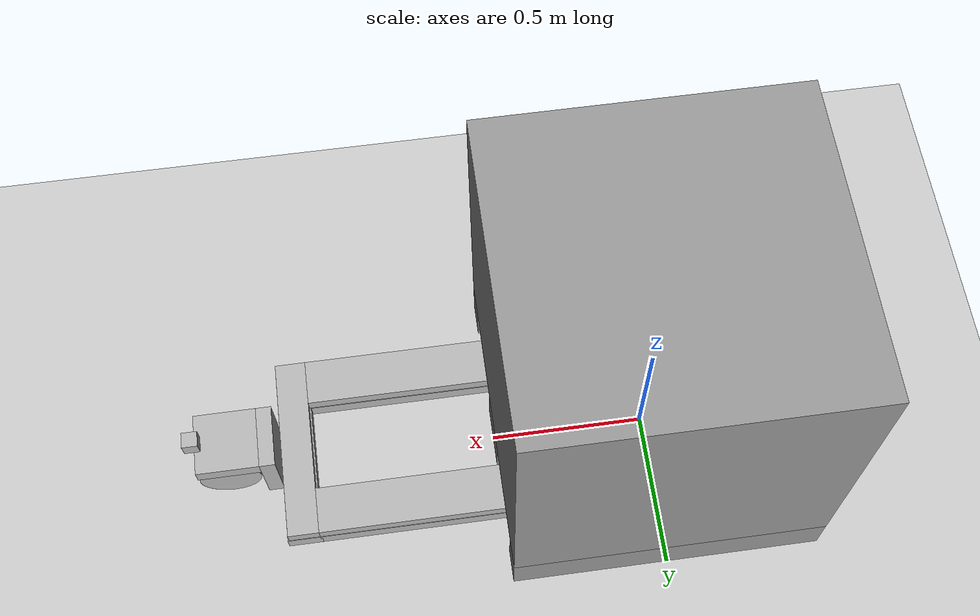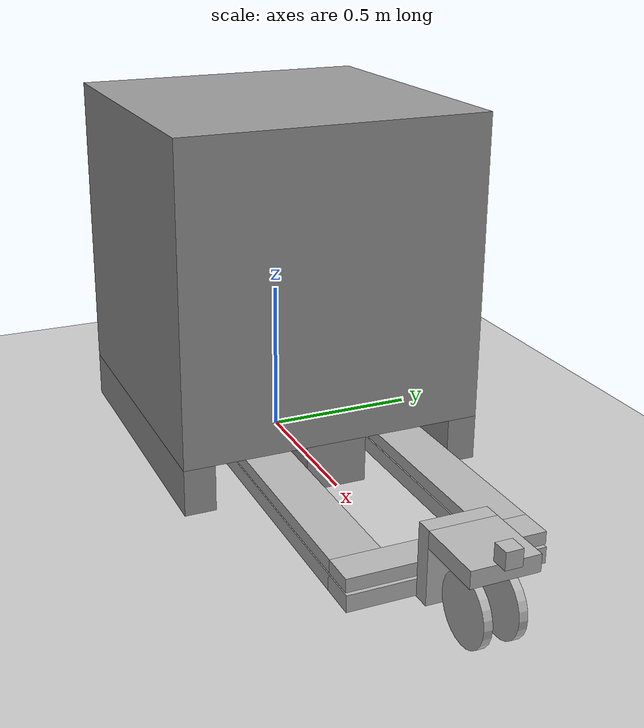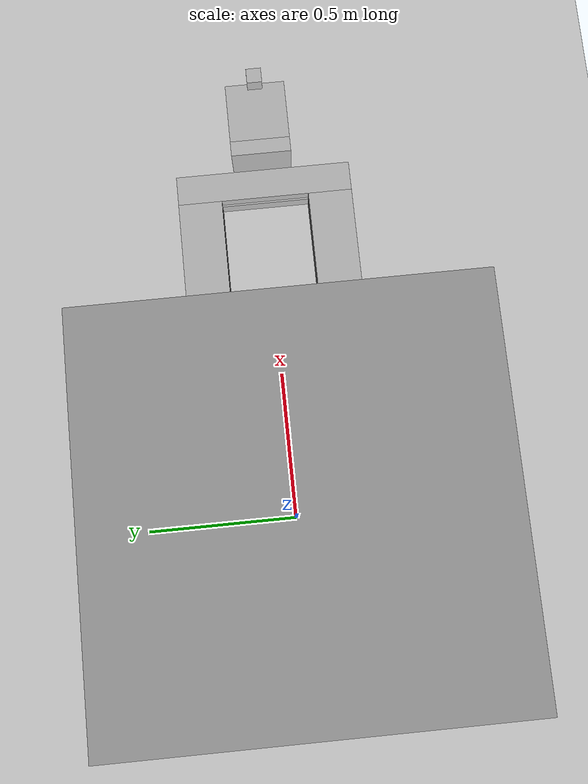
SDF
<?xml version="1.0" ?>
<sdf version="1.4">
  <world name="default">
    <include>
      <uri>model://ground_plane</uri>
    </include>
    <include>
      <uri>model://sun</uri>
    </include>
    <include>
      <uri>model://gazebo_pallet_jack</uri>
      <pose>0.7 0 0 0 0 0</pose>
    </include>
    <include>
    	<uri>model://200k_box</uri>
      <pose>0 0 0 0 0 0</pose>
    </include>
  </world>
</sdf>

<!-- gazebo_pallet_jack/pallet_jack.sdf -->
<sdf version='1.4'>
	<model name="pallet_jack">
		<static>false</static>

		<!-- CHASSIS -->
		<link name='chassis'>
			<pose>0 0 0 0 0 0</pose>

			<collision name='center_collision'>
				<pose>.4475 0 .075 0 0 0</pose>
				<geometry>
					<box>
						<size>.11  .6 .05</size> <!-- x = .1 + .01 avoid collision between front and lift-->
					</box>
				</geometry>
			</collision>

			<visual name='center_visual'>
				<pose>.4475 0 .075 0 0 0</pose>
				<geometry>
					<box>
						<size>.11 .6 .05</size>
					</box>
				</geometry>
			</visual>

			<collision name='left_collision'>
				<pose>-.1526 -.225 .075 0 0 0</pose>
				<geometry>
					<box>
						<size>1.1 .15 .05</size>
					</box>
				</geometry>
			</collision>

			<visual name='left_visual'>
				<pose>-.1526 -.225 .075 0 0 0</pose>
				<geometry>
					<box>
						<size>1.1 .15 .05</size>
					</box>
				</geometry>
			</visual>

			<collision name='right_collision'>
				<pose>-.1526 .225 .075 0 0 0</pose>
				<geometry>
					<box>
						<size>1.1 .15 .05</size>
					</box>
				</geometry>
			</collision>

			<visual name='right_visual'>
				<pose>-.1526 .225 .075 0 0 0</pose>
				<geometry>
					<box>
						<size>1.1 .15 .05</size>
					</box>
				</geometry>
			</visual>

			<collision name = "front_collision">
				<pose>.53 0 .16 0 0 0</pose>
				<geometry>
					<box>
						<size>.05 .2 .22</size>
					</box>
				</geometry>
			</collision>

			<visual name = "front_visual">
				<pose>.53 0 .16 0 0 0</pose>
				<geometry>
					<box>
						<size>.05 .2 .22</size>
					</box>
				</geometry>
			</visual>

			<collision name = "front_up_collision">
				<pose>.655 0 .245 0 0 0</pose>
				<geometry>
					<box>
						<size>.2 .2 .05</size>
					</box>
				</geometry>
			</collision>

			<visual name = "front_up_visual">
				<pose>.655 0 .245 0 0 0</pose>
				<geometry>
					<box>
						<size>.2 .2 .05</size>
					</box>
				</geometry>
			</visual>

			<!-- Intertia values -->
			<inertial>
				<mass>100</mass>
			</inertial>
		</link>

		<!--LIFT-->
		<link name = "lift">
			<pose> 0 0 .125 0 0 0</pose> <!--z pose: 0.1 + 0.04/2 + 0,005 to avoid chassis collision-->
			<collision name='center_lift_collision'>
				<pose>.447 0 0 0 0 0</pose>
				<geometry>
					<box>
						<size>.1 .6 .04</size>
					</box>
				</geometry>
			</collision>

			<visual name='center_lift_visual'>
				<pose>.447 0 0 0 0 0</pose>
				<geometry>
					<box>
						<size>.1 .6 .04</size>
					</box>
				</geometry>
			</visual>

			<collision name='left_lift_collision'>
				<pose>-.1526 -.225 0 0 0 0</pose>
				<geometry>
					<box>
						<size>1.1 .15 .04</size>
					</box>
				</geometry>
				<surface>
					<friction>
						<ode>
							<mu>1000000000</mu>
							<mu2>1000000000</mu2>
							<slip1>0</slip1>
							<slip2>0</slip2>
						</ode>
					</friction>
				</surface>
			</collision>

			<visual name='left_lift_visual'>
				<pose>-.1526 -.225 0 0 0 0</pose>
				<geometry>
					<box>
						<size>1.1 .15 .04</size>
					</box>
				</geometry>
			</visual>

			<collision name='right_lift_collision'>
				<pose>-.1526 .225 0 0 0 0</pose>
				<geometry>
					<box>
						<size>1.1 .15 .04</size>
					</box>
				</geometry>
				<surface>
					<friction>
						<ode>
							<mu>1000000000</mu>
							<mu2>1000000000</mu2>
							<slip1>0</slip1>
							<slip2>0</slip2>
						</ode>
					</friction>
				</surface>
			</collision>

			<visual name='right_lift_visual'>
				<pose>-.1526 .225 0 0 0 0</pose>
				<geometry>
					<box>
						<size>1.1 .15 .04</size>
					</box>
				</geometry>
			</visual>

			<!-- Intertia values -->
			<inertial>
				<mass>50</mass>
			</inertial>

			<!-- laser sensor is solidal to the lift -->
			<!-- it was gpu_ray -->
			<sensor type="ray" name="head_hokuyo_sensor">
				<pose>.5 0 .06 0 0 3.14</pose>
				<visualize>true</visualize>
				<update_rate>40</update_rate>
				<ray>
					<scan>
						<horizontal>
							<samples>720</samples>
							<resolution>1</resolution>
							<min_angle>-1.0472</min_angle>
							<max_angle>1.0472</max_angle>
						</horizontal>
					</scan>
					<range>
						<min>0.01</min>
						<max>.6</max>
						<resolution>0.01</resolution>
					</range>
					<noise>
						<type>gaussian</type>
						<mean>0.0</mean>
						<stddev>0.01</stddev>
					</noise>
				</ray>
				<plugin name="gazebo_ros_head_hokuyo_controller" filename="libgazebo_ros_laser.so">
					<topicName>/pallet_jack/laser/scan</topicName>
					<frameName>chassis</frameName>
				</plugin>
				<plugin name = "laser_plugin" filename = "liblaser_plugin.so"/>
			</sensor>
		</link>

		<!--BACK LEFT WHEEL-->
		<link name = "back_left_wheel">
			<pose>-.6 -.317 .04 0 1.5707 1.5707</pose>
			<collision name = "back_left_wheel_collision">
				<geometry>
					<cylinder>
						<radius>.04</radius>
						<length>.03</length>
					</cylinder>
				</geometry>
			</collision>

			<visual name = "back_left_wheel_visual">
				<geometry>
					<cylinder>
						<radius>.04</radius>
						<length>.03</length>
					</cylinder>
				</geometry>
			</visual>
			<!-- Intertia values -->
			<inertial>
				<mass>5</mass>
			</inertial>
		</link>

		<!--BACK RIGHT WHEEL-->
		<link name = "back_right_wheel">
			<pose>-.6 .317 .04 0 1.5707 1.5707</pose>
			<collision name = "back_right_wheel_collision">
				<geometry>
					<cylinder>
						<radius>.04</radius>
						<length>.03</length>
					</cylinder>
				</geometry>
			</collision>

			<visual name = "back_right_wheel_visual">
				<geometry>
					<cylinder>
						<radius>.04</radius>
						<length>.03</length>
					</cylinder>
				</geometry>
			</visual>

			<!-- Intertia values -->
			<inertial>
				<mass>5</mass>
			</inertial>
		</link>
		<!-- Wheel sources of movement -->

		<!--CENTER RIGHT WHEEL-->
		<link name = "center_right_wheel">
			<pose>.67 .05 .1 0 1.5707 1.5707</pose>
			<collision name = "center_right_wheel_collision">
				<geometry>
					<cylinder>
						<radius>.1</radius>
						<length>.025</length>
					</cylinder>
				</geometry>
				<surface>
					<friction>
						<ode>
							<mu>10000000000</mu>
							<mu2>10000000000</mu2>
							<slip1>0</slip1>
							<slip2>0</slip2>
						</ode>
					</friction>
				</surface>
			</collision>

			<visual name = "center_right_wheel_visual">
				<geometry>
					<cylinder>
						<radius>.1</radius>
						<length>.025</length>
					</cylinder>
				</geometry>
			</visual>

			<!-- Intertia values -->
			<inertial>
				<mass>10</mass>
			</inertial>
		</link>

		<!--CENTER LEFT WHEEL-->
		<link name = "center_left_wheel">
			<pose>.67 -.05 .1 0 1.5707 1.5707</pose>
			<collision name = "center_left_wheel_collision">
				<geometry>
					<cylinder>
						<radius>.1</radius>
						<length>.025</length>
					</cylinder>
				</geometry>
				<surface>
					<friction>
						<ode>
							<mu>10000000000</mu>
							<mu2>10000000000</mu2>
							<slip1>0</slip1>
							<slip2>0</slip2>
						</ode>
					</friction>
				</surface>
			</collision>

			<visual name = "center_left_wheel_visual">
				<geometry>
					<cylinder>
						<radius>.1</radius>
						<length>.025</length>
					</cylinder>
				</geometry>
			</visual>

			<!-- Intertia values -->
			<inertial>
				<mass>10</mass>
			</inertial>
		</link>

		<!-- this is a dummy link that is used in order to obtain 2 DOF
			 between the chassis and the center wheel -->
		<link name = "dummy_link">
			<pose>.67 0 .1 0 0 0</pose>
		</link>

		<!-- Camera -->
		<link name="camera_link">
			<pose>.76 0 .295 0 0 0</pose>
			<collision name="camera_collision">
				<geometry>
					<box>
						<size>0.05 0.05 0.05</size>
					</box>
				</geometry>
			</collision>

			<visual name="camera_visual">
				<geometry>
					<box>
						<size>0.05 0.05 0.05</size>
					</box>
				</geometry>
			</visual>

			<sensor type="camera" name="camera1">
				<update_rate>30.0</update_rate>
				<camera name="head">
					<horizontal_fov>1.3962634</horizontal_fov>
					<image>
						<width>800</width>
						<height>800</height>
						<format>R8G8B8</format>
					</image>
					<clip>
						<near>0.02</near>
						<far>300</far>
					</clip>
				</camera>
		        <plugin name="camera_controller" filename="libgazebo_ros_camera.so">
		          <alwaysOn>true</alwaysOn>
		          <updateRate>0.0</updateRate>
		          <cameraName>pallet_jack/camera</cameraName>
		          <imageTopicName>image_raw</imageTopicName>
		          <cameraInfoTopicName>camera_info</cameraInfoTopicName>
		          <frameName>camera_link</frameName>
		          <hackBaseline>0.07</hackBaseline>
		          <distortionK1>0.0</distortionK1>
		          <distortionK2>0.0</distortionK2>
		          <distortionK3>0.0</distortionK3>
		          <distortionT1>0.0</distortionT1>
		          <distortionT2>0.0</distortionT2>
		        </plugin>
			</sensor>
		</link>

		<!--CHASSIS BACK RIGHT WHEEL JOINT-->
		<joint type = "revolute" name = "chassis_backright_joint">
			<pose>0 0 0 0 0 0</pose>
			<child>back_right_wheel</child>
			<parent>chassis</parent>
			<axis>
			 	<xyz>0 1 0</xyz>
			 	<dynamics>
            		<friction>0</friction>
            		<damping>0</damping>
        		</dynamics>
			</axis>

		</joint>

		<!--CHASSIS BACK LEFT WHEEL JOINT-->
		<joint type = "revolute" name = "chassis_backleft_joint">
			<pose>0 0 0 0 0 0</pose>
			<child>back_left_wheel</child>
			<parent>chassis</parent>
			<axis>
			 	<xyz>0 1 0</xyz>
			 	<dynamics>
            		<friction>0</friction>
            		<damping>0</damping>
        		</dynamics>
			</axis>
		</joint>

		<!--CHASSIS CENTER WHEEL JOINT-->

		<joint type = "revolute" name = "chassis_dummy_joint">
			<pose>0 0 0 0 0 0</pose>
			<child>dummy_link</child>
			<parent>chassis</parent>
			<axis>
				<xyz>0 0 1</xyz>
        		<use_parent_model_frame>0</use_parent_model_frame>
        		<limit>
          			<lower>-1.5707</lower>
          			<upper>1.5707</upper>
        		</limit>
        		<dynamics>
            		<friction>2</friction>
            		<damping>0</damping>
        		</dynamics>
			</axis>
		</joint>

		<!-- JOINTS BETWEEN WHEELS AND DUMMY LINK -->
		<joint type = "revolute" name = "dummy_centerL_joint">
			<pose>0 0 0 0 0 0</pose>
			<child>center_left_wheel</child>
			<parent>dummy_link</parent>
			<axis>
			 	<xyz>0 0 1</xyz>
        		<use_parent_model_frame>0</use_parent_model_frame>
			</axis>
		</joint>

		<joint type = "revolute" name = "dummy_centerR_joint">
			<pose>0 0 0 0 0 0</pose>
			<child>center_right_wheel</child>
			<parent>dummy_link</parent>
			<axis>
			 	<xyz>0 0 1</xyz>
        		<use_parent_model_frame>0</use_parent_model_frame>
			</axis>
		</joint>

		<!-- JOINT BETWEEN CHASSIS AND LIFT-->
		<joint type = "prismatic" name = "chassis_lift_joint">
			<pose> 0 0 0.1 0 0 0 </pose><!--z was 0.1-->
			<child>lift</child>
			<parent>chassis</parent>
			<axis>
			 	<xyz>0 0 1</xyz>
        		<use_parent_model_frame>0</use_parent_model_frame>
        		<limit>
        			<lower>.0</lower>
        			<upper>0.5</upper>
        			<effort>100000</effort>
        		</limit>

        		<dynamics>
        			<!-- it was 50 -->
            <damping>500</damping>
          </dynamics>
			</axis>

			<physics>
          <ode>
            <implicit_spring_damper>1</implicit_spring_damper>
          </ode>
        </physics>
		</joint>

		<!-- CAMERA -->
		<joint name="camera_joint" type="fixed">
			<pose>0 0 0 0 0 0</pose>
		    <axis><xyz>0 0 0 </xyz></axis>
		    <parent>chassis</parent>
		    <child>camera_link</child>
		</joint>

		<plugin name="differential_drive_controller" filename="libgazebo_ros_diff_drive.so">
          <alwaysOn>true</alwaysOn>
          <updateRate>10</updateRate>
          <leftJoint>dummy_centerL_joint</leftJoint>
          <rightJoint>dummy_centerR_joint</rightJoint>
          <wheelSeparation>0.1</wheelSeparation>
          <wheelDiameter>0.2</wheelDiameter>
      	  <wheelTorque>2.5</wheelTorque>
          <torque>200000</torque>
          <commandTopic>cmd_vel</commandTopic>
          <odometryTopic>odom</odometryTopic>
          <odometryFrame>odom</odometryFrame>
          <robotBaseFrame>base_footprint</robotBaseFrame>
          <legacyMode>false</legacyMode>
      </plugin>

	<!-- Lift Plugin -->
	<plugin name="lift_plugin" filename="liblift_plugin.so">
	</plugin>

	</model>
</sdf>

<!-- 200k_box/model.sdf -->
<sdf version='1.6'>
	<model name='200k_box'>
		<link name='link'>
			<pose frame=''>0 0 0 0 0 0</pose>
			<inertial>
				<mass>200</mass>
				<inertia>
					<ixx>320</ixx>
					<ixy>320</ixy>
					<ixz>320</ixz>
					<iyy>320</iyy>
					<iyz>320</iyz>
					<izz>320</izz>
				</inertia>
			</inertial>
			<self_collide>0</self_collide>
			<kinematic>0</kinematic>
			<gravity>1</gravity>
			<visual name='visual'>
				<pose frame=''>0 0 .65 0 0 0</pose>
				<geometry>
					<box>
						<size>1 1 1</size>
					</box>
				</geometry>
				<material>
					<script>
						<name>Gazebo/Grey</name>
						<uri>file://media/materials/scripts/gazebo.material</uri>
					</script>
					<ambient>0.3 0.3 0.3 1</ambient>
					<diffuse>0.7 0.7 0.7 1</diffuse>
					<specular>0.01 0.01 0.01 1</specular>
					<emissive>0 0 0 1</emissive>
					<shader type='vertex'>
						<normal_map>__default__</normal_map>
					</shader>
				</material>
				<pose frame=''>0 0 0 0 -0 0</pose>
				<transparency>0</transparency>
				<cast_shadows>1</cast_shadows>
			</visual>
			<collision name='collision'>
				<laser_retro>0</laser_retro>
				<max_contacts>10</max_contacts>
				<pose frame=''>0 0 .65 0 0 0</pose>
				<geometry>
					<box>
						<size>1 1 1</size>
					</box>
				</geometry>
				<surface>
					<friction>
						<ode>
							<mu>100000000</mu>
							<mu2>100000000</mu2>
							<slip1>0</slip1>
							<slip2>0</slip2>
						</ode>
						<torsional>
							<coefficient>1</coefficient>
							<patch_radius>0</patch_radius>
							<surface_radius>0</surface_radius>
							<use_patch_radius>1</use_patch_radius>
							<ode>
								<slip>0</slip>
							</ode>
						</torsional>
					</friction>
					<bounce>
						<restitution_coefficient>0</restitution_coefficient>
						<threshold>1e+06</threshold>
					</bounce>
					<contact>
						<collide_without_contact>0</collide_without_contact>
						<collide_without_contact_bitmask>1</collide_without_contact_bitmask>
						<collide_bitmask>1</collide_bitmask>
						<ode>
							<soft_cfm>0</soft_cfm>
							<soft_erp>0.2</soft_erp>
							<kp>1e+13</kp>
							<kd>1</kd>
							<max_vel>0.01</max_vel>
							<min_depth>0</min_depth>
						</ode>
						<bullet>
							<split_impulse>1</split_impulse>
							<split_impulse_penetration_threshold>-0.01</split_impulse_penetration_threshold>
							<soft_cfm>0</soft_cfm>
							<soft_erp>0.2</soft_erp>
							<kp>1e+13</kp>
							<kd>1</kd>
						</bullet>
					</contact>
				</surface>
			</collision>
			<collision name = "left_c">
				<pose>0 0.45 .075 0 0 0</pose>
				<geometry>
					<box>
						<size>1 .1 .15</size>
					</box>
				</geometry>
			</collision>
			<visual name = 'left_v'>
				<pose>0 0.45 .075 0 0 0</pose>
				<geometry>
					<box>
						<size>1 .1 .15</size>
					</box>
				</geometry>
				<material>
					<script>
						<name>Gazebo/Grey</name>
						<uri>file://media/materials/scripts/gazebo.material</uri>
					</script>
					<ambient>0.3 0.3 0.3 1</ambient>
					<diffuse>0.7 0.7 0.7 1</diffuse>
					<specular>0.01 0.01 0.01 1</specular>
					<emissive>0 0 0 1</emissive>
					<shader type='vertex'>
						<normal_map>__default__</normal_map>
					</shader>
				</material>
				<pose frame=''>0 0 0 0 -0 0</pose>
				<transparency>0</transparency>
				<cast_shadows>1</cast_shadows>
			</visual>
			<collision name = "right_c">
				<pose>0 -0.45 .075 0 0 0</pose>
				<geometry>
					<box>
						<size>1 .1 .15</size>
					</box>
				</geometry>
			</collision>
			<visual name = 'right_v'>
				<pose>0 -0.45 .075 0 0 0</pose>
				<geometry>
					<box>
						<size>1 .1 .15</size>
					</box>
				</geometry>
				<material>
					<script>
						<name>Gazebo/Grey</name>
						<uri>file://media/materials/scripts/gazebo.material</uri>
					</script>
					<ambient>0.3 0.3 0.3 1</ambient>
					<diffuse>0.7 0.7 0.7 1</diffuse>
					<specular>0.01 0.01 0.01 1</specular>
					<emissive>0 0 0 1</emissive>
					<shader type='vertex'>
						<normal_map>__default__</normal_map>
					</shader>
				</material>
				<pose frame=''>0 0 0 0 -0 0</pose>
				<transparency>0</transparency>
				<cast_shadows>1</cast_shadows>
			</visual>
			<collision name = "center_c">
				<pose>0 0 .075 0 0 0</pose>
				<geometry>
					<box>
						<size>1 .2 .15</size>
					</box>
				</geometry>
			</collision>
			<visual name = 'center_v'>
				<pose>0 0 .075 0 0 0</pose>
				<geometry>
					<box>
						<size>1 .2 .15</size>
					</box>
				</geometry>
				<material>
					<script>
						<name>Gazebo/Grey</name>
						<uri>file://media/materials/scripts/gazebo.material</uri>
					</script>
					<ambient>0.3 0.3 0.3 1</ambient>
					<diffuse>0.7 0.7 0.7 1</diffuse>
					<specular>0.01 0.01 0.01 1</specular>
					<emissive>0 0 0 1</emissive>
					<shader type='vertex'>
						<normal_map>__default__</normal_map>
					</shader>
				</material>
				<pose frame=''>0 0 0 0 -0 0</pose>
				<transparency>0</transparency>
				<cast_shadows>1</cast_shadows>
			</visual>
		</link>
	</model>
	<static>0</static>
	<allow_auto_disable>1</allow_auto_disable>
</sdf>
